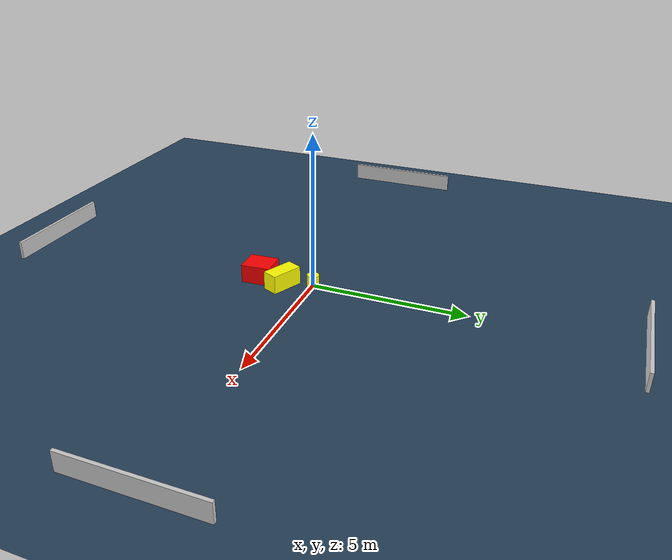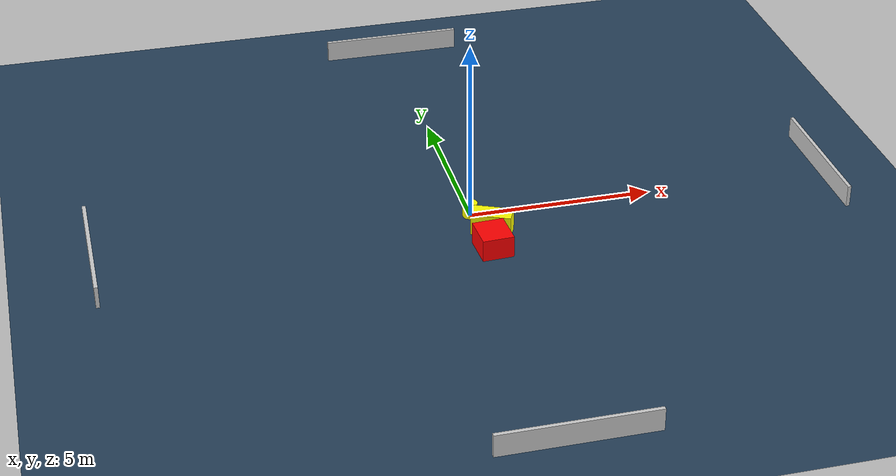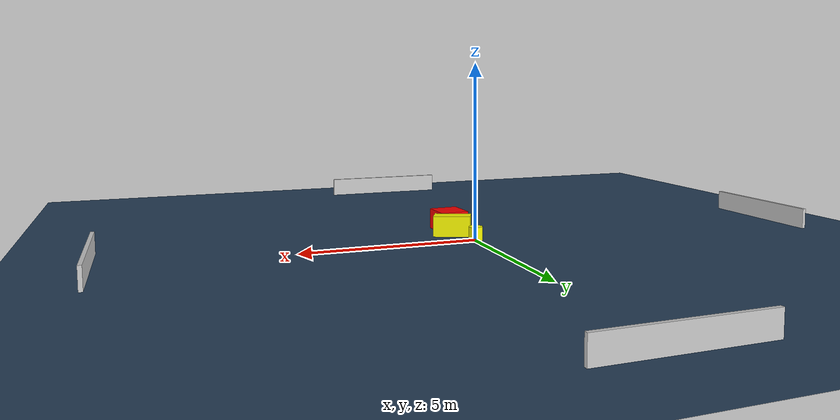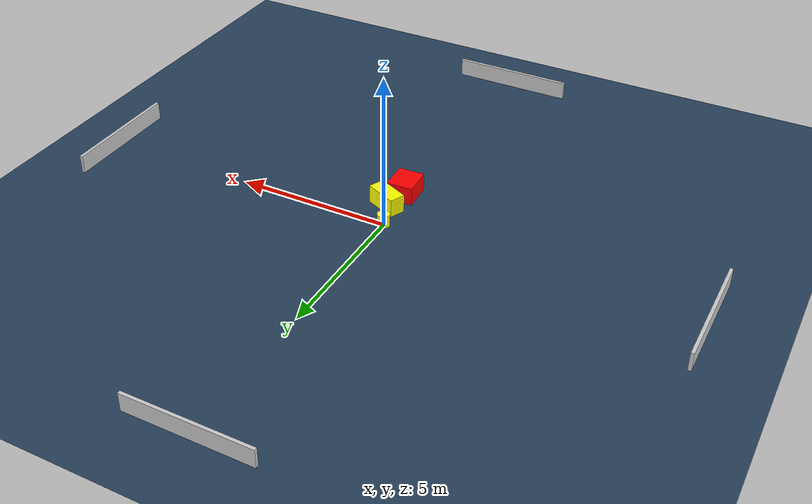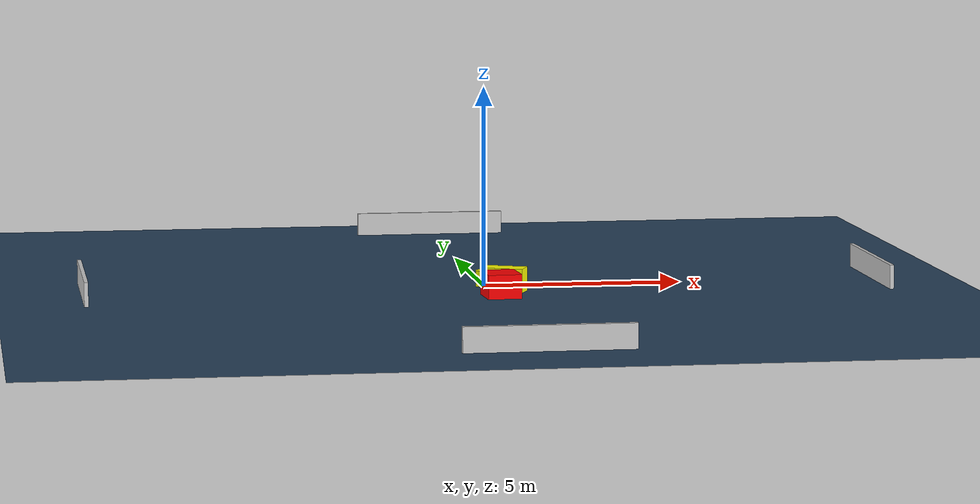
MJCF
<?xml version="1.0" ?>
<mujoco model="generated_environment">
  <option timestep="0.01" integrator="RK4" cone="elliptic"/>
  <default>
    <geom density="1"/>
  </default>
  <asset>
    <texture builtin="gradient" height="3072" name="skybox" rgb1="0.3 0.5 0.7" rgb2="0 0 0" type="skybox" width="512"/>
    <texture builtin="checker" height="300" name="groundplane" rgb1="0.2 0.3 0.4" rgb2="0.1 0.2 0.3" type="2d" width="300"/>
    <material name="groundplane" reflectance="0.2" texrepeat="5 5" texture="groundplane"/>
  </asset>
  <worldbody>
    <light dir="0 0 -1" directional="true" pos="0 0 1.5"/>
    <geom condim="3" friction="0.5 0.005 0.001" material="groundplane" name="floor" pos="0 0 0" size="0 0 0.05" type="plane"/>
    <body name="walls">
      <geom name="wall_1" condim="4" pos="-10.0 0.0 0.3" rgba="0.800000011920929 0.800000011920929 0.800000011920929 1.0" size="0.05 2.0 0.3" type="box"/>
      <geom name="wall_2" condim="4" pos="10.0 0.0 0.3" rgba="0.800000011920929 0.800000011920929 0.800000011920929 1.0" size="0.05 2.0 0.3" type="box"/>
      <geom name="wall_3" condim="4" pos="0.0 -10.0 0.3" rgba="0.800000011920929 0.800000011920929 0.800000011920929 1.0" size="2.0 0.05 0.3" type="box"/>
      <geom name="wall_4" condim="4" pos="0.0 10.0 0.3" rgba="0.800000011920929 0.800000011920929 0.800000011920929 1.0" size="2.0 0.05 0.3" type="box"/>
    </body>
    <body name="robot">
      <joint name="joint_x" type="slide" pos="0 0 0" axis="1 0 0"/>
      <joint name="joint_y" type="slide" pos="0 0 0" axis="0 1 0"/>
      <geom name="robot" type="cylinder" pos="0.0 0.0 0.2" size="0.2 0.2 0.0" mass="5.0" friction="1.0 0.005 0.0001" condim="4" rgba="1.0 1.0 0.0 1.0"/>
    </body>
    <body name="obstacle_1_movable">
      <geom name="obstacle_1_movable" condim="4" pos="0.37284545215043036 -0.9104918424066184 0.3" euler="0 0 65.67751777764128" friction="0.0 0.005 0.001" rgba="1.0 1.0 0.0 1.0" size="0.25899376158567944 0.5353479352060106 0.3" type="box" mass="0.1"/>
      <joint type="free"/>
    </body>
    <body name="obstacle_2_static">
      <geom name="obstacle_2_static" condim="4" pos="0.1686560550178656 -1.7850502766633911 0.3" euler="0 0 182.97845341388697" friction="0.0 0.005 0.001" rgba="1.0 0.0 0.0 1.0" size="0.4213412572487236 0.4799830001550551 0.3" type="box"/>
    </body>
  </worldbody>
  <actuator>
    <motor name="actuator_x" joint="joint_x" gear="1" ctrlrange="-1 1"/>
    <motor name="actuator_y" joint="joint_y" gear="1" ctrlrange="-1 1"/>
  </actuator>
</mujoco>
